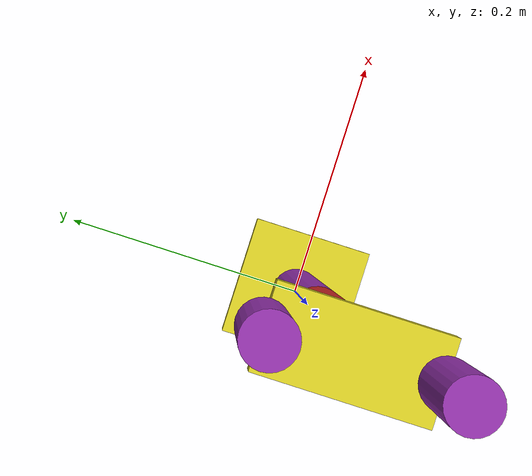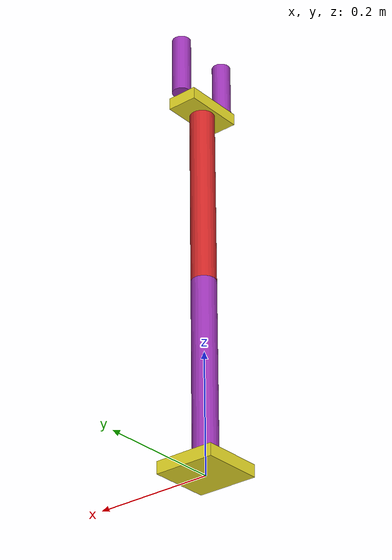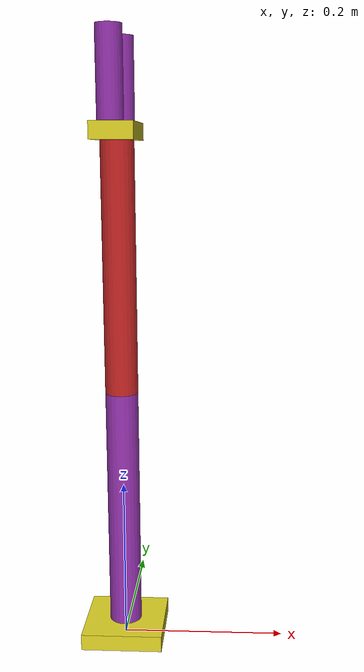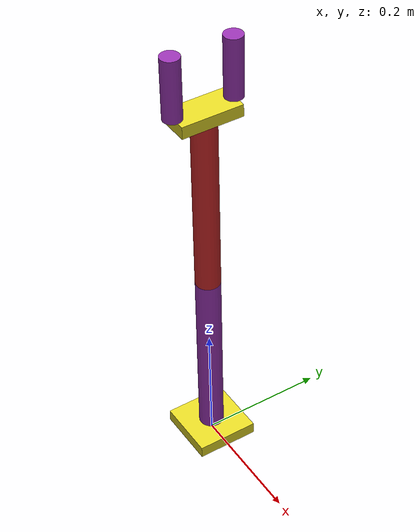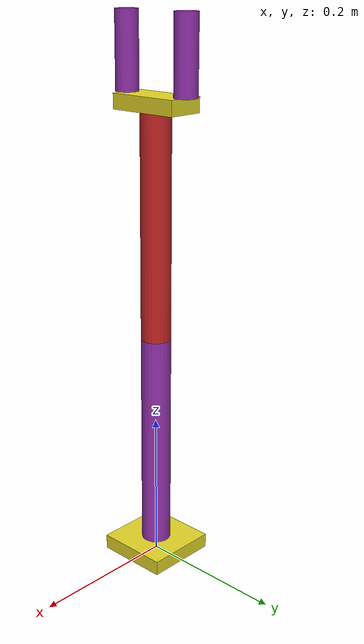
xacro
<?xml version="1.0"?>
<robot xmlns:xacro="http://www.ros.org/wiki/xacro">

    <xacro:property name="arm_base_length" value="0.1" />
    <xacro:property name="arm_base_width" value="0.1" />
    <xacro:property name="arm_base_height" value="0.02" />
    <xacro:property name="gripper_base_length" value="0.05" />
    <xacro:property name="gripper_base_width" value="0.1" />
    <xacro:property name="gripper_base_height" value="0.02" />
    <xacro:property name="arm_radius" value="0.02" />
    <xacro:property name="arm_length" value="0.3" />
    <xacro:property name="gripper_radius" value="0.015" />
    <xacro:property name="gripper_length" value="0.1" />

    <link name="arm_base_link">
        <visual>
            <geometry>
                <box size="${arm_base_length} ${arm_base_width} ${arm_base_height}" />
            </geometry>
            <origin xyz="0 0 ${arm_base_height / 2.0}" rpy="0 0 0" />
            <material name="yellow" />
        </visual>

        <xacro:box_collition_inertia m="0.5" x="${arm_base_length}" y="${arm_base_width}" z="${arm_base_height}"
                           o_xyz="0 0 ${arm_base_height / 2.0}" o_rpy="0 0 0" />
    </link>

    <!-- PRIMER BRAZO -->
    <xacro:macro name="arm_link" params="prefix color o_xyz">
        <link name="${prefix}_arm_link">
            <visual>
                <geometry>
                    <cylinder radius="${arm_radius}" length="${arm_length}" />
                </geometry>
                <origin xyz="${o_xyz}" rpy="0 0 0" />
                <material name="${color}" />
            </visual>

            <xacro:cylinder2_collition_inertia m="0.3" r="${arm_radius}" l="${arm_length}"
                                    o_xyz="${o_xyz}" o_rpy="0 0 0" />
        </link>
    </xacro:macro>
    <xacro:arm_link prefix="first" color="purple" o_xyz="0 0 ${arm_length/2}" />
    <xacro:arm_link prefix="hand" color="red" o_xyz="0 0 ${arm_length/2}" />

    <link name="gripper_base_link">
        <visual>
            <geometry>
                <box size="${gripper_base_length} ${gripper_base_width} ${gripper_base_height}" />
            </geometry>
            <origin xyz="0 0 ${gripper_base_height / 2.0}" rpy="0 0 0" />
            <material name="yellow" />
        </visual>

        <xacro:box_collition_inertia m="0.5" x="${gripper_base_length}" y="${gripper_base_width}" z="${gripper_base_height}"
                           o_xyz="0 0 ${gripper_base_height / 2.0}" o_rpy="0 0 0" />
    </link>

    <!-- gripper -->
    <xacro:macro name="gripper_link" params="prefix color o_xyz">
        <link name="${prefix}_gripper_link">
            <visual>
                <geometry>
                    <cylinder radius="${gripper_radius}" length="${gripper_length}" />
                </geometry>
                <origin xyz="${o_xyz}" rpy="0 0 0" />
                <material name="${color}" />
            </visual>

            <xacro:cylinder2_collition_inertia m="0.3" r="${gripper_radius}" l="${gripper_length}"
                                    o_xyz="${o_xyz}" o_rpy="0 0 0" />
        </link>
    </xacro:macro>

    <xacro:gripper_link prefix="left" color="purple" o_xyz="0 0 ${gripper_length/2}" />
    <xacro:gripper_link prefix="right" color="purple" o_xyz="0 0 ${gripper_length/2}" />

    <joint name="first_joint" type="revolute">
        <parent link="arm_base_link"/>
        <child link="first_arm_link"/>
        <origin xyz="0 0 ${arm_base_height}" rpy="0 0 0"/>
        <axis xyz="0 1 0"/>
        <limit lower="0" upper="${pi/2}" effort="100" velocity="100"/>
        <dynamics friction="0.3" damping="0.3" />
    </joint>

    <joint name="second_joint" type="revolute">
        <parent link="first_arm_link" />
        <child link="hand_arm_link" />
        <origin xyz="0 0 ${arm_length}" rpy="0 0 0" />
        <axis xyz="0 1 0" />
        <limit lower="0.0" upper="${pi/2}" effort="100" velocity="100"/>
        <dynamics friction="0.3" damping="0.3" />
    </joint>

    <joint name="gripper_base_joint" type="fixed">
        <parent link="hand_arm_link"/>
        <child link="gripper_base_link"/>
        <origin xyz="0.0 0.0 ${arm_length}" rpy="0.0 0.0 0.0"/>
    </joint>

    <joint name="gripper_left_joint" type="revolute">
        <parent link="gripper_base_link"/>
        <child link="left_gripper_link"/>
        <origin xyz="0 -0.05 ${gripper_base_height}" rpy="0 0 0"/>
        <axis xyz="-1 0 0"/>
        <limit lower="0" upper="${pi/2}" effort="100" velocity="100"/>
        <dynamics friction="0.3" damping="0.3" />
    </joint>

    <joint name="gripper_right_joint" type="revolute">
        <parent link="gripper_base_link"/>
        <child link="right_gripper_link"/>
        <origin xyz="0 0.05 ${gripper_base_height}" rpy="0 0 0"/>
        <axis xyz="1 0 0"/>
        <limit lower="0" upper="${pi/2}" effort="100" velocity="100"/>
        <dynamics friction="0.3" damping="0.3" />
    </joint>

</robot>
